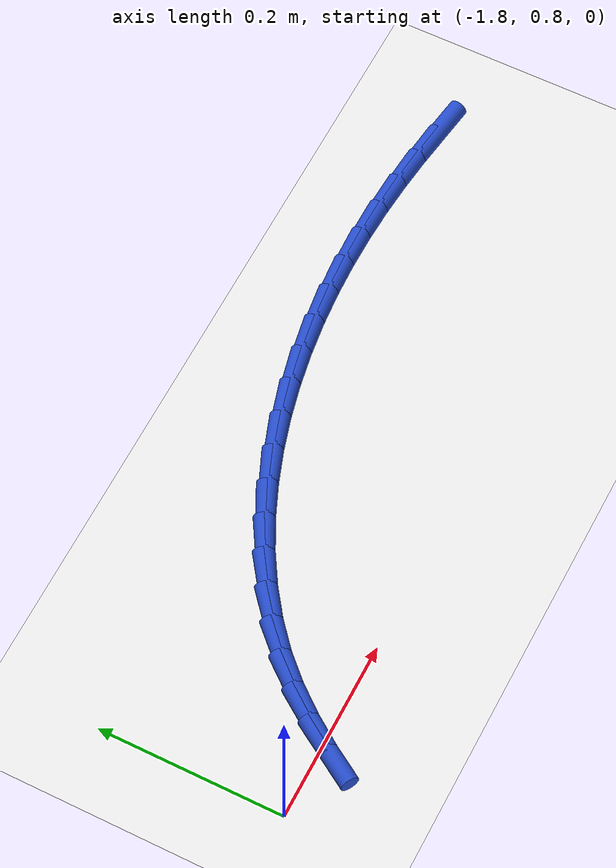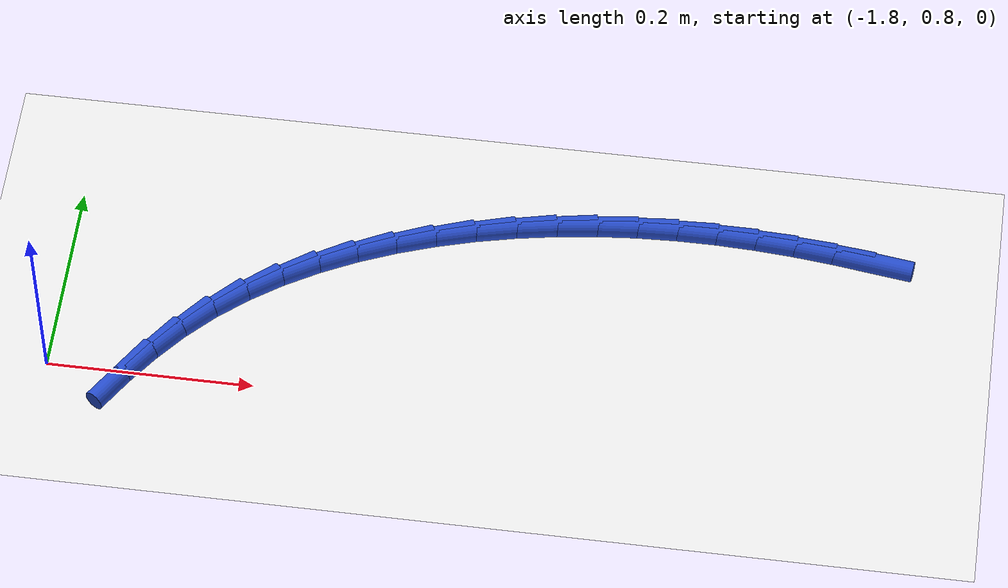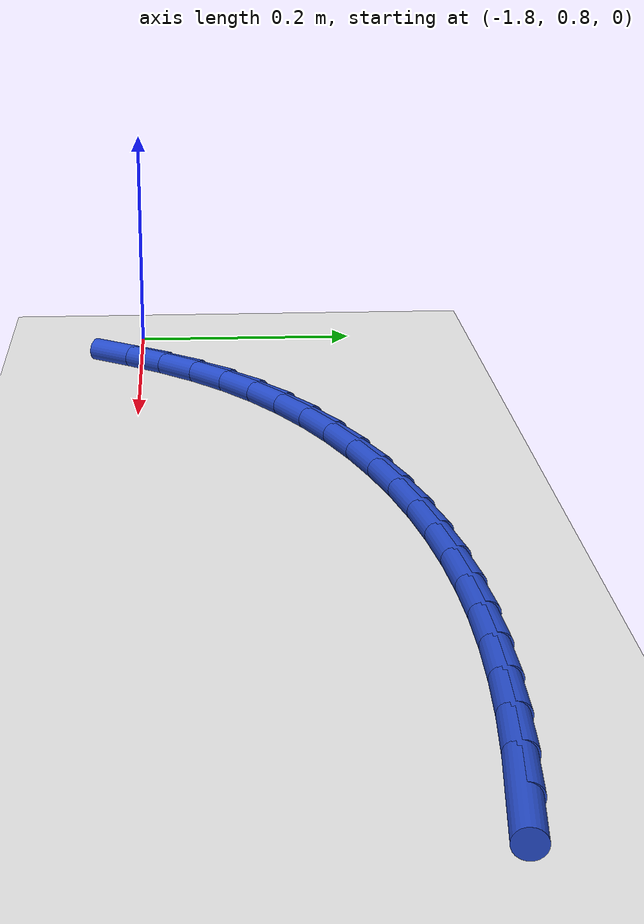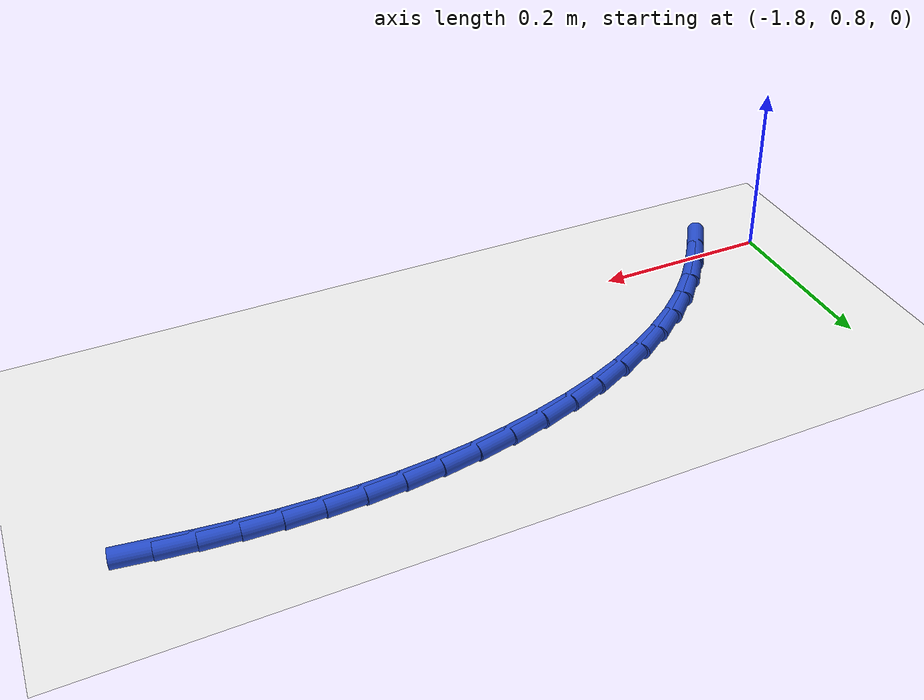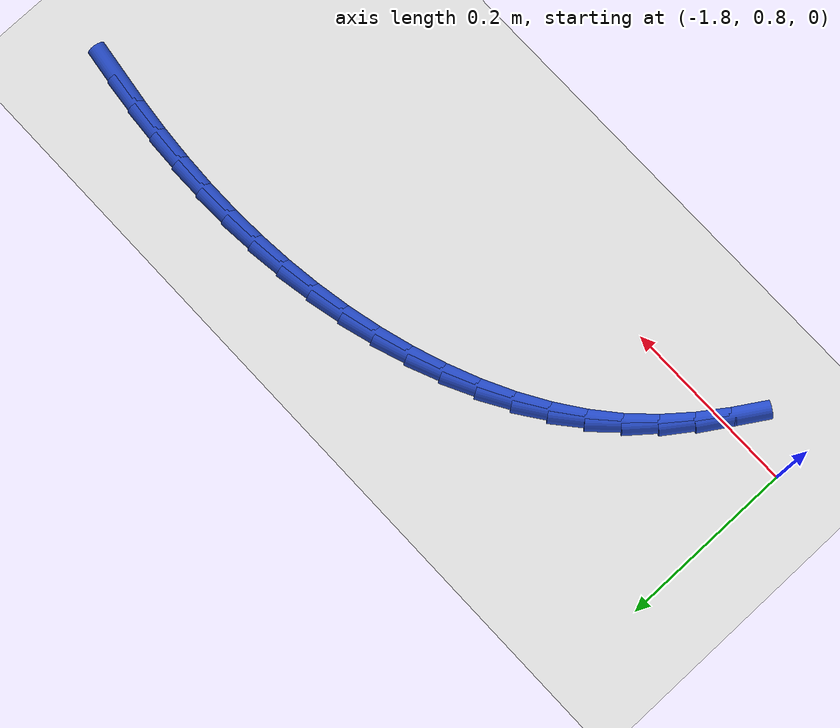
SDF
<sdf version="1.6">
 <world name="default">
  <model name="ground_plane">
   <static>1</static>
   <link name="link">
    <collision name="collision">
     <geometry><plane><normal>0 0 1</normal><size>100 100</size></plane></geometry>
     <surface><friction><ode><mu>100</mu><mu2>50</mu2></ode></friction></surface>
    </collision>
    <visual name="visual">
     <cast_shadows>0</cast_shadows>
     <geometry><plane><normal>0 0 1</normal><size>100 100</size></plane></geometry>
     <material>
      <script><uri>file://media/materials/scripts/gazebo.material</uri><name>Gazebo/WhiteGlow</name></script>
     </material>
    </visual>
   </link>
  </model>
  <model name="line">
   <link name="link_42">
    <pose>-1.0280241378965373 1.01206931989738 0.01 0 1.57 -0.14163893846656542</pose>
    <collision name="collision">
     <geometry><cylinder><radius>0.01</radius><length>0.08</length></cylinder></geometry>
    </collision>
    <visual name="visual">
     <material>
      <script><name>Gazebo/Blue</name><uri>file://media/materials/scripts/gazebo.material</uri></script>
     </material>
     <geometry><cylinder><radius>0.01</radius><length>0.08</length></cylinder></geometry>
    </visual>
   </link>
   <link name="link_43">
    <pose>-1.0657675750418658 1.0174512988454736 0.01 0 1.57 -0.11044365113428964</pose>
    <collision name="collision">
     <geometry><cylinder><radius>0.01</radius><length>0.08</length></cylinder></geometry>
    </collision>
    <visual name="visual">
     <material>
      <script><name>Gazebo/Blue</name><uri>file://media/materials/scripts/gazebo.material</uri></script>
     </material>
     <geometry><cylinder><radius>0.01</radius><length>0.08</length></cylinder></geometry>
    </visual>
   </link>
   <link name="link_44">
    <pose>-1.1037412010078642 1.021662380661557 0.01 0 1.57 -0.07652546785735674</pose>
    <collision name="collision">
     <geometry><cylinder><radius>0.01</radius><length>0.08</length></cylinder></geometry>
    </collision>
    <visual name="visual">
     <material>
      <script><name>Gazebo/Blue</name><uri>file://media/materials/scripts/gazebo.material</uri></script>
     </material>
     <geometry><cylinder><radius>0.01</radius><length>0.08</length></cylinder></geometry>
    </visual>
   </link>
   <link name="link_45">
    <pose>-1.141934376219652 1.0245908500125198 0.01 0 1.57 -0.039928201726243895</pose>
    <collision name="collision">
     <geometry><cylinder><radius>0.01</radius><length>0.08</length></cylinder></geometry>
    </collision>
    <visual name="visual">
     <material>
      <script><name>Gazebo/Blue</name><uri>file://media/materials/scripts/gazebo.material</uri></script>
     </material>
     <geometry><cylinder><radius>0.01</radius><length>0.08</length></cylinder></geometry>
    </visual>
   </link>
   <link name="link_46">
    <pose>-1.1803364611023484 1.0261249915652535 0.01 0 1.57 -0.0007279315552040474</pose>
    <collision name="collision">
     <geometry><cylinder><radius>0.01</radius><length>0.08</length></cylinder></geometry>
    </collision>
    <visual name="visual">
     <material>
      <script><name>Gazebo/Blue</name><uri>file://media/materials/scripts/gazebo.material</uri></script>
     </material>
     <geometry><cylinder><radius>0.01</radius><length>0.08</length></cylinder></geometry>
    </visual>
   </link>
   <link name="link_47">
    <pose>-1.218936816081073 1.0261530899866476 0.01 0 1.57 0.04096038770682659</pose>
    <collision name="collision">
     <geometry><cylinder><radius>0.01</radius><length>0.08</length></cylinder></geometry>
    </collision>
    <visual name="visual">
     <material>
      <script><name>Gazebo/Blue</name><uri>file://media/materials/scripts/gazebo.material</uri></script>
     </material>
     <geometry><cylinder><radius>0.01</radius><length>0.08</length></cylinder></geometry>
    </visual>
   </link>
   <link name="link_48">
    <pose>-1.2577248015809452 1.024563429943593 0.01 0 1.57 0.08497735586148884</pose>
    <collision name="collision">
     <geometry><cylinder><radius>0.01</radius><length>0.08</length></cylinder></geometry>
    </collision>
    <visual name="visual">
     <material>
      <script><name>Gazebo/Blue</name><uri>file://media/materials/scripts/gazebo.material</uri></script>
     </material>
     <geometry><cylinder><radius>0.01</radius><length>0.08</length></cylinder></geometry>
    </visual>
   </link>
   <link name="link_49">
    <pose>-1.2966897780270845 1.0212442961029802 0.01 0 1.57 0.13109465278531335</pose>
    <collision name="collision">
     <geometry><cylinder><radius>0.01</radius><length>0.08</length></cylinder></geometry>
    </collision>
    <visual name="visual">
     <material>
      <script><name>Gazebo/Blue</name><uri>file://media/materials/scripts/gazebo.material</uri></script>
     </material>
     <geometry><cylinder><radius>0.01</radius><length>0.08</length></cylinder></geometry>
    </visual>
   </link>
   <link name="link_50">
    <pose>-1.3358115884547324 1.0160860525096407 0.01 0 1.57 0.17895395203966896</pose>
    <collision name="collision">
     <geometry><cylinder><radius>0.01</radius><length>0.08</length></cylinder></geometry>
    </collision>
    <visual name="visual">
     <material>
      <script><name>Gazebo/Blue</name><uri>file://media/materials/scripts/gazebo.material</uri></script>
     </material>
     <geometry><cylinder><radius>0.01</radius><length>0.08</length></cylinder></geometry>
    </visual>
   </link>
   <link name="link_51">
    <pose>-1.3749222060982327 1.0090113700915038 0.01 0 1.57 0.22889449513166307</pose>
    <collision name="collision">
     <geometry><cylinder><radius>0.01</radius><length>0.08</length></cylinder></geometry>
    </collision>
    <visual name="visual">
     <material>
      <script><name>Gazebo/Blue</name><uri>file://media/materials/scripts/gazebo.material</uri></script>
     </material>
     <geometry><cylinder><radius>0.01</radius><length>0.08</length></cylinder></geometry>
    </visual>
   </link>
   <link name="link_52">
    <pose>-1.4137369141755376 0.9999684144393381 0.01 0 1.57 0.28166393329170697</pose>
    <collision name="collision">
     <geometry><cylinder><radius>0.01</radius><length>0.08</length></cylinder></geometry>
    </collision>
    <visual name="visual">
     <material>
      <script><name>Gazebo/Blue</name><uri>file://media/materials/scripts/gazebo.material</uri></script>
     </material>
     <geometry><cylinder><radius>0.01</radius><length>0.08</length></cylinder></geometry>
    </visual>
   </link>
   <link name="link_53">
    <pose>-1.4519678243027645 0.9889060440816805 0.01 0 1.57 0.33803811700745473</pose>
    <collision name="collision">
     <geometry><cylinder><radius>0.01</radius><length>0.08</length></cylinder></geometry>
    </collision>
    <visual name="visual">
     <material>
      <script><name>Gazebo/Blue</name><uri>file://media/materials/scripts/gazebo.material</uri></script>
     </material>
     <geometry><cylinder><radius>0.01</radius><length>0.08</length></cylinder></geometry>
    </visual>
   </link>
   <link name="link_54">
    <pose>-1.4893270480960323 0.9757731175470671 0.01 0 1.57 0.39881962750737726</pose>
    <collision name="collision">
     <geometry><cylinder><radius>0.01</radius><length>0.08</length></cylinder></geometry>
    </collision>
    <visual name="visual">
     <material>
      <script><name>Gazebo/Blue</name><uri>file://media/materials/scripts/gazebo.material</uri></script>
     </material>
     <geometry><cylinder><radius>0.01</radius><length>0.08</length></cylinder></geometry>
    </visual>
   </link>
   <link name="link_55">
    <pose>-1.5255266971714605 0.9605184933640343 0.01 0 1.57 0.4648294612416513</pose>
    <collision name="collision">
     <geometry><cylinder><radius>0.01</radius><length>0.08</length></cylinder></geometry>
    </collision>
    <visual name="visual">
     <material>
      <script><name>Gazebo/Blue</name><uri>file://media/materials/scripts/gazebo.material</uri></script>
     </material>
     <geometry><cylinder><radius>0.01</radius><length>0.08</length></cylinder></geometry>
    </visual>
   </link>
   <link name="link_56">
    <pose>-1.5602788831451664 0.943091030061118 0.01 0 1.57 0.5368786773176236</pose>
    <collision name="collision">
     <geometry><cylinder><radius>0.01</radius><length>0.08</length></cylinder></geometry>
    </collision>
    <visual name="visual">
     <material>
      <script><name>Gazebo/Blue</name><uri>file://media/materials/scripts/gazebo.material</uri></script>
     </material>
     <geometry><cylinder><radius>0.01</radius><length>0.08</length></cylinder></geometry>
    </visual>
   </link>
   <link name="link_57">
    <pose>-1.5932957176332694 0.9234395861668555 0.01 0 1.57 0.6157116546575448</pose>
    <collision name="collision">
     <geometry><cylinder><radius>0.01</radius><length>0.08</length></cylinder></geometry>
    </collision>
    <visual name="visual">
     <material>
      <script><name>Gazebo/Blue</name><uri>file://media/materials/scripts/gazebo.material</uri></script>
     </material>
     <geometry><cylinder><radius>0.01</radius><length>0.08</length></cylinder></geometry>
    </visual>
   </link>
   <link name="link_58">
    <pose>-1.624289312251888 0.9015130202097821 0.01 0 1.57 0.7019124532417944</pose>
    <collision name="collision">
     <geometry><cylinder><radius>0.01</radius><length>0.08</length></cylinder></geometry>
    </collision>
    <visual name="visual">
     <material>
      <script><name>Gazebo/Blue</name><uri>file://media/materials/scripts/gazebo.material</uri></script>
     </material>
     <geometry><cylinder><radius>0.01</radius><length>0.08</length></cylinder></geometry>
    </visual>
   </link>
   <link name="link_59">
    <pose>-1.6529717786171392 0.8772601907184344 0.01 0 1.57 0.794905887057208</pose>
    <collision name="collision">
     <geometry><cylinder><radius>0.01</radius><length>0.08</length></cylinder></geometry>
    </collision>
    <visual name="visual">
     <material>
      <script><name>Gazebo/Blue</name><uri>file://media/materials/scripts/gazebo.material</uri></script>
     </material>
     <geometry><cylinder><radius>0.01</radius><length>0.08</length></cylinder></geometry>
    </visual>
   </link>
   <link name="link_60">
    <pose>-1.6790845112794848 0.8506461311801722 0.01 0 1.57 0.8820594149023839</pose>
    <collision name="collision">
     <geometry><cylinder><radius>0.01</radius><length>0.08</length></cylinder></geometry>
    </collision>
    <visual name="visual">
     <material>
      <script><name>Gazebo/Blue</name><uri>file://media/materials/scripts/gazebo.material</uri></script>
     </material>
     <geometry><cylinder><radius>0.01</radius><length>0.08</length></cylinder></geometry>
    </visual>
   </link>
   <link name="link_61">
    <pose>-1.7027794860190124 0.8218626670563252 0.01 0 1.57 0.9531725428583507</pose>
    <collision name="collision">
     <geometry><cylinder><radius>0.01</radius><length>0.08</length></cylinder></geometry>
    </collision>
    <visual name="visual">
     <material>
      <script><name>Gazebo/Blue</name><uri>file://media/materials/scripts/gazebo.material</uri></script>
     </material>
     <geometry><cylinder><radius>0.01</radius><length>0.08</length></cylinder></geometry>
    </visual>
   </link>
   <link name="link_62">
    <pose>-1.7245112083551781 0.7912687315857454 0.01 0 1.57 1.0076312658905597</pose>
    <collision name="collision">
     <geometry><cylinder><radius>0.01</radius><length>0.08</length></cylinder></geometry>
    </collision>
    <visual name="visual">
     <material>
      <script><name>Gazebo/Blue</name><uri>file://media/materials/scripts/gazebo.material</uri></script>
     </material>
     <geometry><cylinder><radius>0.01</radius><length>0.08</length></cylinder></geometry>
    </visual>
   </link>
  </model>
 </world>
</sdf>
